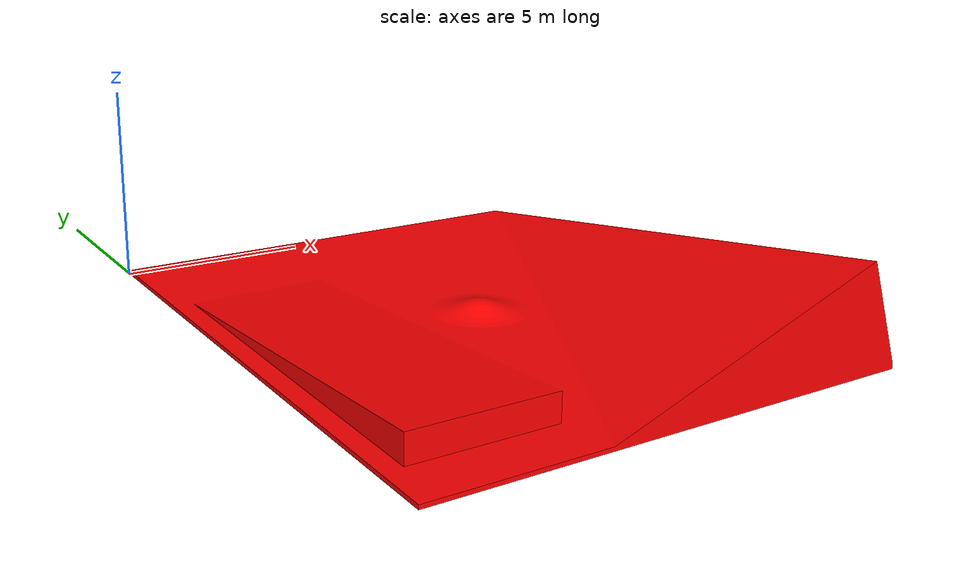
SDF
<?xml version="1.0"?>
<sdf version="1.5">
  <model name="ground_test">
    <!-- Set the model as static -->
    <static>true</static>

    <!-- Give the base link a unique name -->
    <link name="base">
      <!-- Offset the base by half the length of the cylinder -->
      <pose>0 0 0 0 0 0</pose>
      <inertial>
        <mass>1</mass>
        <inertia>
          <ixx>0.001087473</ixx>
          <iyy>0.001087473</iyy>
          <izz>0.001092437</izz>
          <ixy>0</ixy>
          <ixz>0</ixz>
          <iyz>0</iyz>
        </inertia>
      </inertial>
      <collision name="base_collision">
       <pose>0.0 0.0 0.0 1.57 0 0</pose>
        <geometry>
          <mesh>
            <uri>model://wetexplorer_gazebo/models/ground_test/meshes/ground_test.STL</uri>

          </mesh>
        </geometry>

      </collision>

      <!-- The visual is mostly a copy of the collision -->
      <visual name="base_visual">
        <!-- Offset the visual by half the base's height. We are not rotating
             mesh since symmetrical -->
        <pose>0.0 0.0 0.0 1.57 0 0</pose>
        <geometry>
          <mesh>
            <uri>model://wetexplorer_gazebo/models/ground_test/meshes/ground_test.STL</uri>
          </mesh>
        </geometry>
        <material>
          <!-- Set ambient color to blue: (R,G,B,Alpha) -->
          <ambient>1 0 0 1</ambient>   <!-- Blue ambient color -->
          <diffuse>1 0 0 1</diffuse>   <!-- Blue diffuse color -->
          <specular>0.1 0.1 0.1 1</specular> <!-- Small specular highlight -->
          <emissive>0 0 0 1</emissive> <!-- No emissive light -->
        </material>
      </visual>
    </link>
  </model>
</sdf>
